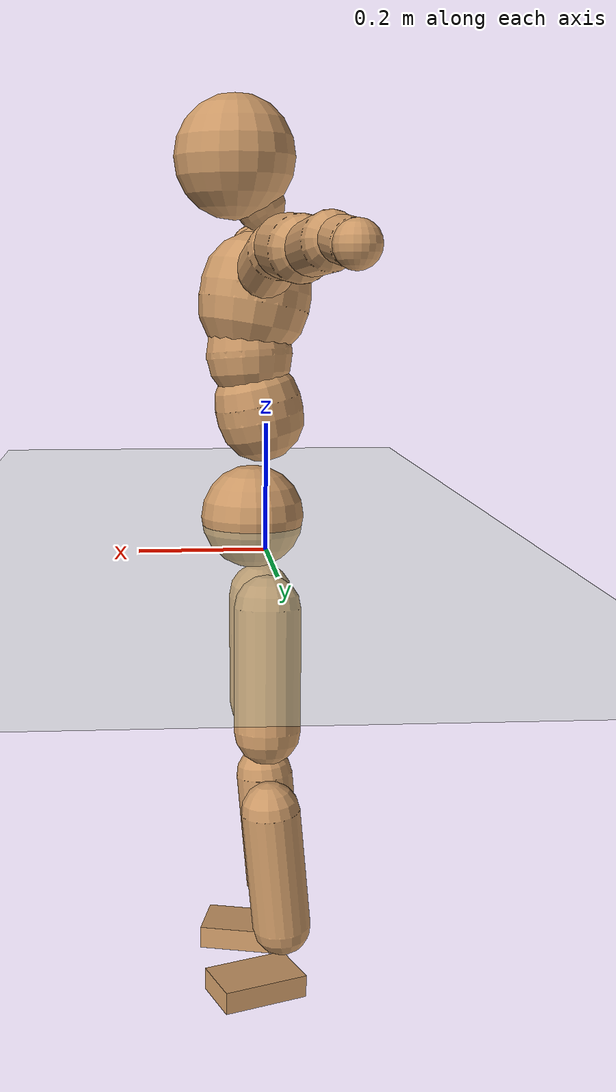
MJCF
<mujoco model="humanoid">
  <compiler coordinate="local" angle="radian"/>
  <default>
    <joint damping="0.0" armature="0.01" stiffness="0.0" limited="true"/>
    <geom conaffinity="1" condim="3" contype="7" margin="0.001" rgba="0.8 0.6 .4 1"/>
  </default>
  <asset>
    <texture type="skybox" builtin="gradient" rgb1=".4 .5 .6" rgb2="0 0 0" width="100" height="100"/>
    <texture builtin="flat" height="1278" mark="cross" markrgb="1 1 1" name="texgeom" random="0.01" rgb1="0.8 0.6 0.4" rgb2="0.8 0.6 0.4" type="cube" width="127"/>
    <texture builtin="checker" height="100" name="texplane" rgb1="0 0 0" rgb2="0.8 0.8 0.8" type="2d" width="100"/>
    <material name="MatPlane" reflectance="0.5" shininess="1" specular="1" texrepeat="60 60" texture="texplane"/>
    <material name="geom" texture="texgeom" texuniform="true"/>
  </asset>
  <worldbody>
    <light cutoff="100" diffuse="1 1 1" dir="-0 0 -1.3" directional="true" exponent="1" pos="0 0 1.3" specular=".1 .1 .1"/>
    <geom conaffinity="1" condim="3" name="floor" pos="0 0 0" rgba="0.8 0.9 0.8 1" size="100 100 .2" type="plane" material="MatPlane"/>
    <body name="Pelvis" pos="0.0019 -0.241 0.0134">
      <freejoint name="Pelvis"/>
      <geom type="sphere" contype="1" conaffinity="1" density="500" size="0.0900" pos="0.0000 0.0000 0.0000" name="Pelvis"/>
      <body name="L_Hip" pos="-0.0222 0.0571 -0.0796">
        <joint name="L_Hip_x" type="hinge" pos="0 0 0" axis="1 0 0" stiffness="800" damping="80" armature="0.02" range="-180.0000 180.0000"/>
        <joint name="L_Hip_y" type="hinge" pos="0 0 0" axis="0 1 0" stiffness="800" damping="80" armature="0.02" range="-180.0000 180.0000"/>
        <joint name="L_Hip_z" type="hinge" pos="0 0 0" axis="0 0 1" stiffness="800" damping="80" armature="0.02" range="-180.0000 180.0000"/>
        <geom type="capsule" contype="1" conaffinity="1" density="500" fromto="0.0006 0.0081 -0.0720 0.0022 0.0325 -0.2878" size="0.0583" name="L_Hip"/>
        <body name="L_Knee" pos="0.0028 0.0406 -0.3598">
          <joint name="L_Knee_x" type="hinge" pos="0 0 0" axis="1 0 0" stiffness="800" damping="80" armature="0.02" range="-180.0000 180.0000"/>
          <joint name="L_Knee_y" type="hinge" pos="0 0 0" axis="0 1 0" stiffness="800" damping="80" armature="0.02" range="-180.0000 180.0000"/>
          <joint name="L_Knee_z" type="hinge" pos="0 0 0" axis="0 0 1" stiffness="800" damping="80" armature="0.02" range="-180.0000 180.0000"/>
          <geom type="capsule" contype="1" conaffinity="1" density="500" fromto="-0.0072 -0.0024 -0.0744 -0.0289 -0.0098 -0.2977" size="0.0524" name="L_Knee"/>
          <body name="L_Ankle" pos="-0.0361 -0.0122 -0.3722">
            <joint name="L_Ankle_x" type="hinge" pos="0 0 0" axis="1 0 0" stiffness="800" damping="80" armature="0.02" range="-180.0000 180.0000"/>
            <joint name="L_Ankle_y" type="hinge" pos="0 0 0" axis="0 1 0" stiffness="800" damping="80" armature="0.02" range="-180.0000 180.0000"/>
            <joint name="L_Ankle_z" type="hinge" pos="0 0 0" axis="0 0 1" stiffness="800" damping="80" armature="0.02" range="-180.0000 180.0000"/>
            <geom type="box" contype="1" conaffinity="1" density="500" pos="0.0554 0.0200 -0.0272" size="0.0782 0.0489 0.0203" quat="0.9850 0.0000 0.0000 0.1725" name="L_Ankle"/>
            <body name="L_Toe" pos="0.1109 0.0401 -0.0543">
              <joint name="L_Toe_x" type="hinge" pos="0 0 0" axis="1 0 0" stiffness="500" damping="50" armature="0.02" range="-180.0000 180.0000"/>
              <joint name="L_Toe_y" type="hinge" pos="0 0 0" axis="0 1 0" stiffness="500" damping="50" armature="0.02" range="-180.0000 180.0000"/>
              <joint name="L_Toe_z" type="hinge" pos="0 0 0" axis="0 0 1" stiffness="500" damping="50" armature="0.02" range="-180.0000 180.0000"/>
              <geom type="box" contype="1" conaffinity="1" density="500" pos="0.0000 0.0000 0.0277" size="0.001 0.0023 0.001" quat="0.9841 0.0000 0.0000 0.1774" name="L_Toe"/>
            </body>
          </body>
        </body>
      </body>
      <body name="R_Hip" pos="-0.0195 -0.06 -0.0868">
        <joint name="R_Hip_x" type="hinge" pos="0 0 0" axis="1 0 0" stiffness="800" damping="80" armature="0.02" range="-180.0000 180.0000"/>
        <joint name="R_Hip_y" type="hinge" pos="0 0 0" axis="0 1 0" stiffness="800" damping="80" armature="0.02" range="-180.0000 180.0000"/>
        <joint name="R_Hip_z" type="hinge" pos="0 0 0" axis="0 0 1" stiffness="800" damping="80" armature="0.02" range="-180.0000 180.0000"/>
        <geom type="capsule" contype="1" conaffinity="1" density="500" fromto="-0.0013 -0.0082 -0.0711 -0.0051 -0.0329 -0.2845" size="0.058" name="R_Hip"/>
        <body name="R_Knee" pos="-0.0064 -0.0412 -0.3557">
          <joint name="R_Knee_x" type="hinge" pos="0 0 0" axis="1 0 0" stiffness="800" damping="80" armature="0.02" range="-180.0000 180.0000"/>
          <joint name="R_Knee_y" type="hinge" pos="0 0 0" axis="0 1 0" stiffness="800" damping="80" armature="0.02" range="-180.0000 180.0000"/>
          <joint name="R_Knee_z" type="hinge" pos="0 0 0" axis="0 0 1" stiffness="800" damping="80" armature="0.02" range="-180.0000 180.0000"/>
          <geom type="capsule" contype="1" conaffinity="1" density="500" fromto="-0.0065 0.0033 -0.0734 -0.0261 0.0133 -0.2938" size="0.053" name="R_Knee"/>
          <body name="R_Ankle" pos="-0.0326 0.0166 -0.3672">
            <joint name="R_Ankle_x" type="hinge" pos="0 0 0" axis="1 0 0" stiffness="800" damping="80" armature="0.02" range="-180.0000 180.0000"/>
            <joint name="R_Ankle_y" type="hinge" pos="0 0 0" axis="0 1 0" stiffness="800" damping="80" armature="0.02" range="-180.0000 180.0000"/>
            <joint name="R_Ankle_z" type="hinge" pos="0 0 0" axis="0 0 1" stiffness="800" damping="80" armature="0.02" range="-180.0000 180.0000"/>
            <geom type="box" contype="1" conaffinity="1" density="500" pos="0.0590 -0.0145 -0.0293" size="0.0821 0.0489 0.0208" quat="0.9928 0.0000 0.0000 -0.1199" name="R_Ankle"/>
            <body name="R_Toe" pos="0.1181 -0.029 -0.0586">
              <joint name="R_Toe_x" type="hinge" pos="0 0 0" axis="1 0 0" stiffness="500" damping="50" armature="0.02" range="-180.0000 180.0000"/>
              <joint name="R_Toe_y" type="hinge" pos="0 0 0" axis="0 1 0" stiffness="500" damping="50" armature="0.02" range="-180.0000 180.0000"/>
              <joint name="R_Toe_z" type="hinge" pos="0 0 0" axis="0 0 1" stiffness="500" damping="50" armature="0.02" range="-180.0000 180.0000"/>
              <geom type="box" contype="1" conaffinity="1" density="500" pos="0.0000 0.0000 0.0313" size="0.001 0.0024 0.0011" quat="0.9939 0.0000 0.0000 -0.1102" name="R_Toe"/>
            </body>
          </body>
        </body>
      </body>
      <body name="Torso" pos="-0.0267 0.0038 0.1175">
        <joint name="Torso_x" type="hinge" pos="0 0 0" axis="1 0 0" stiffness="1000" damping="100" armature="0.02" range="-180.0000 180.0000"/>
        <joint name="Torso_y" type="hinge" pos="0 0 0" axis="0 1 0" stiffness="1000" damping="100" armature="0.02" range="-180.0000 180.0000"/>
        <joint name="Torso_z" type="hinge" pos="0 0 0" axis="0 0 1" stiffness="1000" damping="100" armature="0.02" range="-180.0000 180.0000"/>
        <geom type="capsule" contype="1" conaffinity="1" density="500" fromto="0.0193 0.0025 0.0825 0.0129 0.0017 0.0550" size="0.075" name="Torso"/>
        <body name="Spine" pos="0.0322 0.0041 0.1376">
          <joint name="Spine_x" type="hinge" pos="0 0 0" axis="1 0 0" stiffness="1000" damping="100" armature="0.02" range="-180.0000 180.0000"/>
          <joint name="Spine_y" type="hinge" pos="0 0 0" axis="0 1 0" stiffness="1000" damping="100" armature="0.02" range="-180.0000 180.0000"/>
          <joint name="Spine_z" type="hinge" pos="0 0 0" axis="0 0 1" stiffness="1000" damping="100" armature="0.02" range="-180.0000 180.0000"/>
          <geom type="capsule" contype="1" conaffinity="1" density="500" fromto="0.0021 -0.0017 0.0331 0.0014 -0.0011 0.0221" size="0.0743" name="Spine"/>
          <body name="Chest" pos="0.0035 -0.0028 0.0552">
            <joint name="Chest_x" type="hinge" pos="0 0 0" axis="1 0 0" stiffness="1000" damping="100" armature="0.02" range="-180.0000 180.0000"/>
            <joint name="Chest_y" type="hinge" pos="0 0 0" axis="0 1 0" stiffness="1000" damping="100" armature="0.02" range="-180.0000 180.0000"/>
            <joint name="Chest_z" type="hinge" pos="0 0 0" axis="0 0 1" stiffness="1000" damping="100" armature="0.02" range="-180.0000 180.0000"/>
            <geom type="capsule" contype="1" conaffinity="1" density="500" fromto="-0.0143 -0.0057 0.0828 -0.0095 -0.0038 0.0552" size="0.0956" name="Chest"/>
            <body name="Neck" pos="-0.0308 -0.0136 0.2019">
              <joint name="Neck_x" type="hinge" pos="0 0 0" axis="1 0 0" stiffness="500" damping="50" armature="0.02" range="-180.0000 180.0000"/>
              <joint name="Neck_y" type="hinge" pos="0 0 0" axis="0 1 0" stiffness="500" damping="50" armature="0.02" range="-180.0000 180.0000"/>
              <joint name="Neck_z" type="hinge" pos="0 0 0" axis="0 0 1" stiffness="500" damping="50" armature="0.02" range="-180.0000 180.0000"/>
              <geom type="capsule" contype="1" conaffinity="1" density="500" fromto="0.0107 0.0018 0.0190 0.0426 0.0072 0.0760" size="0.0435" name="Neck"/>
              <body name="Head" pos="0.0533 0.009 0.095">
                <joint name="Head_x" type="hinge" pos="0 0 0" axis="1 0 0" stiffness="500" damping="50" armature="0.02" range="-180.0000 180.0000"/>
                <joint name="Head_y" type="hinge" pos="0 0 0" axis="0 1 0" stiffness="500" damping="50" armature="0.02" range="-180.0000 180.0000"/>
                <joint name="Head_z" type="hinge" pos="0 0 0" axis="0 0 1" stiffness="500" damping="50" armature="0.02" range="-180.0000 180.0000"/>
                <geom type="sphere" contype="1" conaffinity="1" density="500" size="0.1027" pos="0.0000 0.0000 0.0000" name="Head"/>
              </body>
            </body>
            <body name="L_Thorax" pos="-0.0186 0.0688 0.1056">
              <joint name="L_Thorax_x" type="hinge" pos="0 0 0" axis="1 0 0" stiffness="500" damping="50" armature="0.02" range="-180.0000 180.0000"/>
              <joint name="L_Thorax_y" type="hinge" pos="0 0 0" axis="0 1 0" stiffness="500" damping="50" armature="0.02" range="-180.0000 180.0000"/>
              <joint name="L_Thorax_z" type="hinge" pos="0 0 0" axis="0 0 1" stiffness="500" damping="50" armature="0.02" range="-180.0000 180.0000"/>
              <geom type="capsule" contype="1" conaffinity="1" density="500" fromto="-0.0037 0.0235 0.0086 -0.0147 0.0939 0.0343" size="0.0481" name="L_Thorax"/>
              <body name="L_Shoulder" pos="-0.0184 0.1174 0.0429">
                <joint name="L_Shoulder_x" type="hinge" pos="0 0 0" axis="1 0 0" stiffness="500" damping="50" armature="0.02" range="-720.0000 720.0000"/>
                <joint name="L_Shoulder_y" type="hinge" pos="0 0 0" axis="0 1 0" stiffness="500" damping="50" armature="0.02" range="-720.0000 720.0000"/>
                <joint name="L_Shoulder_z" type="hinge" pos="0 0 0" axis="0 0 1" stiffness="500" damping="50" armature="0.02" range="-720.0000 720.0000"/>
                <geom type="capsule" contype="1" conaffinity="1" density="500" fromto="-0.0027 0.0467 -0.0025 -0.0107 0.1868 -0.0101" size="0.0495" name="L_Shoulder"/>
                <body name="L_Elbow" pos="-0.0134 0.2336 -0.0126">
                  <joint name="L_Elbow_x" type="hinge" pos="0 0 0" axis="1 0 0" stiffness="500" damping="50" armature="0.02" range="-720.0000 720.0000"/>
                  <joint name="L_Elbow_y" type="hinge" pos="0 0 0" axis="0 1 0" stiffness="500" damping="50" armature="0.02" range="-720.0000 720.0000"/>
                  <joint name="L_Elbow_z" type="hinge" pos="0 0 0" axis="0 0 1" stiffness="500" damping="50" armature="0.02" range="-720.0000 720.0000"/>
                  <geom type="capsule" contype="1" conaffinity="1" density="500" fromto="-0.0020 0.0458 0.0017 -0.0079 0.1833 0.0067" size="0.0389" name="L_Elbow"/>
                  <body name="L_Wrist" pos="-0.0098 0.2292 0.0084">
                    <joint name="L_Wrist_x" type="hinge" pos="0 0 0" axis="1 0 0" stiffness="300" damping="30" armature="0.02" range="-180.0000 180.0000"/>
                    <joint name="L_Wrist_y" type="hinge" pos="0 0 0" axis="0 1 0" stiffness="300" damping="30" armature="0.02" range="-180.0000 180.0000"/>
                    <joint name="L_Wrist_z" type="hinge" pos="0 0 0" axis="0 0 1" stiffness="300" damping="30" armature="0.02" range="-180.0000 180.0000"/>
                    <geom type="capsule" contype="1" conaffinity="1" density="500" fromto="-0.0026 0.0148 -0.0018 -0.0104 0.0591 -0.0074" size="0.0297" name="L_Wrist"/>
                    <body name="L_Hand" pos="-0.013 0.0738 -0.0092">
                      <joint name="L_Hand_x" type="hinge" pos="0 0 0" axis="1 0 0" stiffness="300" damping="30" armature="0.02" range="-180.0000 180.0000"/>
                      <joint name="L_Hand_y" type="hinge" pos="0 0 0" axis="0 1 0" stiffness="300" damping="30" armature="0.02" range="-180.0000 180.0000"/>
                      <joint name="L_Hand_z" type="hinge" pos="0 0 0" axis="0 0 1" stiffness="300" damping="30" armature="0.02" range="-180.0000 180.0000"/>
                      <geom type="sphere" contype="1" conaffinity="1" density="500" size="0.0306" pos="0.0000 0.0000 0.0000" name="L_Hand"/>
                    </body>
                  </body>
                </body>
              </body>
            </body>
            <body name="R_Thorax" pos="-0.0221 -0.0838 0.1064">
              <joint name="R_Thorax_x" type="hinge" pos="0 0 0" axis="1 0 0" stiffness="500" damping="50" armature="0.02" range="-180.0000 180.0000"/>
              <joint name="R_Thorax_y" type="hinge" pos="0 0 0" axis="0 1 0" stiffness="500" damping="50" armature="0.02" range="-180.0000 180.0000"/>
              <joint name="R_Thorax_z" type="hinge" pos="0 0 0" axis="0 0 1" stiffness="500" damping="50" armature="0.02" range="-180.0000 180.0000"/>
              <geom type="capsule" contype="1" conaffinity="1" density="500" fromto="-0.0016 -0.0222 0.0090 -0.0064 -0.0886 0.0358" size="0.049" name="R_Thorax"/>
              <body name="R_Shoulder" pos="-0.008 -0.1108 0.0448">
                <joint name="R_Shoulder_x" type="hinge" pos="0 0 0" axis="1 0 0" stiffness="500" damping="50" armature="0.02" range="-720.0000 720.0000"/>
                <joint name="R_Shoulder_y" type="hinge" pos="0 0 0" axis="0 1 0" stiffness="500" damping="50" armature="0.02" range="-720.0000 720.0000"/>
                <joint name="R_Shoulder_z" type="hinge" pos="0 0 0" axis="0 0 1" stiffness="500" damping="50" armature="0.02" range="-720.0000 720.0000"/>
                <geom type="capsule" contype="1" conaffinity="1" density="500" fromto="-0.0045 -0.0475 -0.0024 -0.0178 -0.1899 -0.0097" size="0.0513" name="R_Shoulder"/>
                <body name="R_Elbow" pos="-0.0223 -0.2373 -0.0121">
                  <joint name="R_Elbow_x" type="hinge" pos="0 0 0" axis="1 0 0" stiffness="500" damping="50" armature="0.02" range="-720.0000 720.0000"/>
                  <joint name="R_Elbow_y" type="hinge" pos="0 0 0" axis="0 1 0" stiffness="500" damping="50" armature="0.02" range="-720.0000 720.0000"/>
                  <joint name="R_Elbow_z" type="hinge" pos="0 0 0" axis="0 0 1" stiffness="500" damping="50" armature="0.02" range="-720.0000 720.0000"/>
                  <geom type="capsule" contype="1" conaffinity="1" density="500" fromto="-0.0014 -0.0478 0.0012 -0.0054 -0.1911 0.0050" size="0.0406" name="R_Elbow"/>
                  <body name="R_Wrist" pos="-0.0068 -0.2389 0.0062">
                    <joint name="R_Wrist_x" type="hinge" pos="0 0 0" axis="1 0 0" stiffness="300" damping="30" armature="0.02" range="-180.0000 180.0000"/>
                    <joint name="R_Wrist_y" type="hinge" pos="0 0 0" axis="0 1 0" stiffness="300" damping="30" armature="0.02" range="-180.0000 180.0000"/>
                    <joint name="R_Wrist_z" type="hinge" pos="0 0 0" axis="0 0 1" stiffness="300" damping="30" armature="0.02" range="-180.0000 180.0000"/>
                    <geom type="capsule" contype="1" conaffinity="1" density="500" fromto="-0.0017 -0.0157 -0.0015 -0.0069 -0.0627 -0.0060" size="0.0313" name="R_Wrist"/>
                    <body name="R_Hand" pos="-0.0086 -0.0784 -0.0075">
                      <joint name="R_Hand_x" type="hinge" pos="0 0 0" axis="1 0 0" stiffness="300" damping="30" armature="0.02" range="-180.0000 180.0000"/>
                      <joint name="R_Hand_y" type="hinge" pos="0 0 0" axis="0 1 0" stiffness="300" damping="30" armature="0.02" range="-180.0000 180.0000"/>
                      <joint name="R_Hand_z" type="hinge" pos="0 0 0" axis="0 0 1" stiffness="300" damping="30" armature="0.02" range="-180.0000 180.0000"/>
                      <geom type="sphere" contype="1" conaffinity="1" density="500" size="0.0321" pos="0.0000 0.0000 0.0000" name="R_Hand"/>
                    </body>
                  </body>
                </body>
              </body>
            </body>
          </body>
        </body>
      </body>
    </body>
  </worldbody>
  <actuator>
    <motor name="L_Hip_x" joint="L_Hip_x" gear="500"/>
    <motor name="L_Hip_y" joint="L_Hip_y" gear="500"/>
    <motor name="L_Hip_z" joint="L_Hip_z" gear="500"/>
    <motor name="L_Knee_x" joint="L_Knee_x" gear="500"/>
    <motor name="L_Knee_y" joint="L_Knee_y" gear="500"/>
    <motor name="L_Knee_z" joint="L_Knee_z" gear="500"/>
    <motor name="L_Ankle_x" joint="L_Ankle_x" gear="500"/>
    <motor name="L_Ankle_y" joint="L_Ankle_y" gear="500"/>
    <motor name="L_Ankle_z" joint="L_Ankle_z" gear="500"/>
    <motor name="L_Toe_x" joint="L_Toe_x" gear="500"/>
    <motor name="L_Toe_y" joint="L_Toe_y" gear="500"/>
    <motor name="L_Toe_z" joint="L_Toe_z" gear="500"/>
    <motor name="R_Hip_x" joint="R_Hip_x" gear="500"/>
    <motor name="R_Hip_y" joint="R_Hip_y" gear="500"/>
    <motor name="R_Hip_z" joint="R_Hip_z" gear="500"/>
    <motor name="R_Knee_x" joint="R_Knee_x" gear="500"/>
    <motor name="R_Knee_y" joint="R_Knee_y" gear="500"/>
    <motor name="R_Knee_z" joint="R_Knee_z" gear="500"/>
    <motor name="R_Ankle_x" joint="R_Ankle_x" gear="500"/>
    <motor name="R_Ankle_y" joint="R_Ankle_y" gear="500"/>
    <motor name="R_Ankle_z" joint="R_Ankle_z" gear="500"/>
    <motor name="R_Toe_x" joint="R_Toe_x" gear="500"/>
    <motor name="R_Toe_y" joint="R_Toe_y" gear="500"/>
    <motor name="R_Toe_z" joint="R_Toe_z" gear="500"/>
    <motor name="Torso_x" joint="Torso_x" gear="500"/>
    <motor name="Torso_y" joint="Torso_y" gear="500"/>
    <motor name="Torso_z" joint="Torso_z" gear="500"/>
    <motor name="Spine_x" joint="Spine_x" gear="500"/>
    <motor name="Spine_y" joint="Spine_y" gear="500"/>
    <motor name="Spine_z" joint="Spine_z" gear="500"/>
    <motor name="Chest_x" joint="Chest_x" gear="500"/>
    <motor name="Chest_y" joint="Chest_y" gear="500"/>
    <motor name="Chest_z" joint="Chest_z" gear="500"/>
    <motor name="Neck_x" joint="Neck_x" gear="500"/>
    <motor name="Neck_y" joint="Neck_y" gear="500"/>
    <motor name="Neck_z" joint="Neck_z" gear="500"/>
    <motor name="Head_x" joint="Head_x" gear="500"/>
    <motor name="Head_y" joint="Head_y" gear="500"/>
    <motor name="Head_z" joint="Head_z" gear="500"/>
    <motor name="L_Thorax_x" joint="L_Thorax_x" gear="500"/>
    <motor name="L_Thorax_y" joint="L_Thorax_y" gear="500"/>
    <motor name="L_Thorax_z" joint="L_Thorax_z" gear="500"/>
    <motor name="L_Shoulder_x" joint="L_Shoulder_x" gear="500"/>
    <motor name="L_Shoulder_y" joint="L_Shoulder_y" gear="500"/>
    <motor name="L_Shoulder_z" joint="L_Shoulder_z" gear="500"/>
    <motor name="L_Elbow_x" joint="L_Elbow_x" gear="500"/>
    <motor name="L_Elbow_y" joint="L_Elbow_y" gear="500"/>
    <motor name="L_Elbow_z" joint="L_Elbow_z" gear="500"/>
    <motor name="L_Wrist_x" joint="L_Wrist_x" gear="500"/>
    <motor name="L_Wrist_y" joint="L_Wrist_y" gear="500"/>
    <motor name="L_Wrist_z" joint="L_Wrist_z" gear="500"/>
    <motor name="L_Hand_x" joint="L_Hand_x" gear="500"/>
    <motor name="L_Hand_y" joint="L_Hand_y" gear="500"/>
    <motor name="L_Hand_z" joint="L_Hand_z" gear="500"/>
    <motor name="R_Thorax_x" joint="R_Thorax_x" gear="500"/>
    <motor name="R_Thorax_y" joint="R_Thorax_y" gear="500"/>
    <motor name="R_Thorax_z" joint="R_Thorax_z" gear="500"/>
    <motor name="R_Shoulder_x" joint="R_Shoulder_x" gear="500"/>
    <motor name="R_Shoulder_y" joint="R_Shoulder_y" gear="500"/>
    <motor name="R_Shoulder_z" joint="R_Shoulder_z" gear="500"/>
    <motor name="R_Elbow_x" joint="R_Elbow_x" gear="500"/>
    <motor name="R_Elbow_y" joint="R_Elbow_y" gear="500"/>
    <motor name="R_Elbow_z" joint="R_Elbow_z" gear="500"/>
    <motor name="R_Wrist_x" joint="R_Wrist_x" gear="500"/>
    <motor name="R_Wrist_y" joint="R_Wrist_y" gear="500"/>
    <motor name="R_Wrist_z" joint="R_Wrist_z" gear="500"/>
    <motor name="R_Hand_x" joint="R_Hand_x" gear="500"/>
    <motor name="R_Hand_y" joint="R_Hand_y" gear="500"/>
    <motor name="R_Hand_z" joint="R_Hand_z" gear="500"/>
  </actuator>
  <contact>
    <exclude body1="Torso" body2="Chest"/>
    <exclude body1="Head" body2="Chest"/>
    <exclude body1="R_Knee" body2="R_Toe"/>
    <exclude body1="R_Knee" body2="L_Ankle"/>
    <exclude body1="R_Knee" body2="L_Toe"/>
    <exclude body1="L_Knee" body2="L_Toe"/>
    <exclude body1="L_Knee" body2="R_Ankle"/>
    <exclude body1="L_Knee" body2="R_Toe"/>
    <exclude body1="L_Shoulder" body2="Chest"/>
    <exclude body1="R_Shoulder" body2="Chest"/>
  </contact>
  <sensor/>
  <size njmax="700" nconmax="700"/>
</mujoco>
